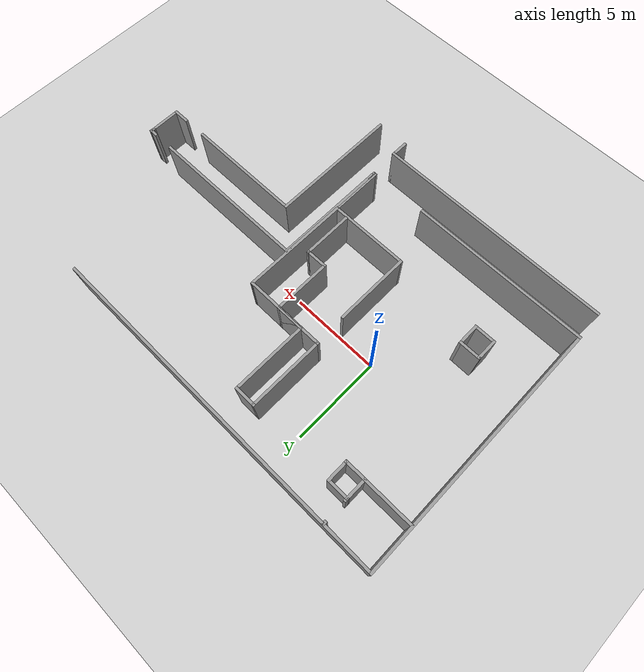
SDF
<sdf version="1.7">
 <world name="default">
  <light name="sun" type="directional">
   <pose>0 0 10 0 -0 0</pose>
   <diffuse>0.8 0.8 0.8 1</diffuse>
   <specular>0.2 0.2 0.2 1</specular>
   <attenuation>
    <range>1000</range>
    <constant>0.9</constant>
    <linear>0.01</linear>
    <quadratic>0.001</quadratic>
   </attenuation>
   <direction>-0.5 0.1 -0.9</direction>
   <spot><inner_angle>0</inner_angle><outer_angle>0</outer_angle><falloff>0</falloff></spot>
  </light>
  <model name="ground_plane">
   <static>1</static>
   <link name="link">
    <collision name="collision">
     <geometry><plane><normal>0 0 1</normal><size>100 100</size></plane></geometry>
     <surface>
      <contact><collide_bitmask>65535</collide_bitmask></contact>
      <friction><ode><mu>100</mu><mu2>50</mu2></ode></friction>
     </surface>
    </collision>
    <visual name="visual">
     <cast_shadows>0</cast_shadows>
     <geometry><plane><normal>0 0 1</normal><size>100 100</size></plane></geometry>
     <material>
      <script><uri>file://media/materials/scripts/gazebo.material</uri><name>Gazebo/Grey</name></script>
     </material>
    </visual>
   </link>
  </model>
  <gravity>0 0 -9.8</gravity>
  <magnetic_field>6e-06 2.3e-05 -4.2e-05</magnetic_field>
  <atmosphere type="adiabatic"/>
  <physics name="default_physics" default="0" type="ode">
   <max_step_size>0.001</max_step_size>
   <real_time_factor>1</real_time_factor>
   <real_time_update_rate>1000</real_time_update_rate>
  </physics>
  <scene><ambient>0.4 0.4 0.4 1</ambient><background>0.7 0.7 0.7 1</background><shadows>1</shadows></scene>
  <audio><device>default</device></audio>
  <spherical_coordinates>
   <surface_model>EARTH_WGS84</surface_model>
   <latitude_deg>0</latitude_deg>
   <longitude_deg>0</longitude_deg>
   <elevation>0</elevation>
   <heading_deg>0</heading_deg>
  </spherical_coordinates>
  <model name="sim_office">
   <pose>5.26742 -1.25499 0 0 -0 0</pose>
   <link name="Wall_0">
    <collision name="Wall_0_Collision">
     <geometry><box><size>3 0.15 2.5</size></box></geometry>
     <pose>0 0 1.25 0 -0 0</pose>
    </collision>
    <visual name="Wall_0_Visual">
     <pose>0 0 1.25 0 -0 0</pose>
     <geometry><box><size>3 0.15 2.5</size></box></geometry>
     <material>
      <script><uri>file://media/materials/scripts/gazebo.material</uri><name>Gazebo/Grey</name></script>
      <ambient>1 1 1 1</ambient>
     </material>
     <meta><layer>0</layer></meta>
    </visual>
    <pose>1.26034 -4.47343 0 0 -0 1.5708</pose>
   </link>
   <link name="Wall_1">
    <collision name="Wall_1_Collision">
     <geometry><box><size>4.5 0.15 2.5</size></box></geometry>
     <pose>0 0 1.25 0 -0 0</pose>
    </collision>
    <visual name="Wall_1_Visual">
     <pose>0 0 1.25 0 -0 0</pose>
     <geometry><box><size>4.5 0.15 2.5</size></box></geometry>
     <material>
      <script><uri>file://media/materials/scripts/gazebo.material</uri><name>Gazebo/Grey</name></script>
      <ambient>1 1 1 1</ambient>
     </material>
     <meta><layer>0</layer></meta>
    </visual>
    <pose>-0.914662 -3.04843 0 0 -0 3.14159</pose>
   </link>
   <link name="Wall_10">
    <collision name="Wall_10_Collision">
     <geometry><box><size>1.25 0.15 2.5</size></box></geometry>
     <pose>0 0 1.25 0 -0 0</pose>
    </collision>
    <visual name="Wall_10_Visual">
     <pose>0 0 1.25 0 -0 0</pose>
     <geometry><box><size>1.25 0.15 2.5</size></box></geometry>
     <material>
      <script><uri>file://media/materials/scripts/gazebo.material</uri><name>Gazebo/Grey</name></script>
      <ambient>1 1 1 1</ambient>
     </material>
     <meta><layer>0</layer></meta>
    </visual>
    <pose>-0.012141 -0.266058 0 0 -0 0</pose>
   </link>
   <link name="Wall_13">
    <collision name="Wall_13_Collision">
     <geometry><box><size>0.15 0.15 2.5</size></box></geometry>
     <pose>0 0 1.25 0 -0 0</pose>
    </collision>
    <visual name="Wall_13_Visual">
     <pose>0 0 1.25 0 -0 0</pose>
     <geometry><box><size>0.15 0.15 2.5</size></box></geometry>
     <material>
      <script><uri>file://media/materials/scripts/gazebo.material</uri><name>Gazebo/Grey</name></script>
      <ambient>1 1 1 1</ambient>
     </material>
     <meta><layer>0</layer></meta>
    </visual>
    <pose>0.537859 -0.266058 0 0 -0 0</pose>
   </link>
   <link name="Wall_16">
    <collision name="Wall_16_Collision">
     <geometry><box><size>2.89988 0.15 2.5</size></box></geometry>
     <pose>0 0 1.25 0 -0 0</pose>
    </collision>
    <visual name="Wall_16_Visual">
     <pose>0 0 1.25 0 -0 0</pose>
     <geometry><box><size>2.89988 0.15 2.5</size></box></geometry>
     <material>
      <script><uri>file://media/materials/scripts/gazebo.material</uri><name>Gazebo/Grey</name></script>
      <ambient>1 1 1 1</ambient>
     </material>
     <meta><layer>0</layer></meta>
    </visual>
    <pose>0.539646 -1.64096 0 0 -0 -1.5695</pose>
   </link>
   <link name="Wall_18">
    <collision name="Wall_18_Collision">
     <geometry><box><size>14.5 0.15 2.5</size></box></geometry>
     <pose>0 0 1.25 0 -0 0</pose>
    </collision>
    <visual name="Wall_18_Visual">
     <pose>0 0 1.25 0 -0 0</pose>
     <geometry><box><size>14.5 0.15 2.5</size></box></geometry>
     <material>
      <script><uri>file://media/materials/scripts/gazebo.material</uri><name>Gazebo/Grey</name></script>
      <ambient>1 1 1 1</ambient>
     </material>
     <meta><layer>0</layer></meta>
    </visual>
    <pose>-11.7707 1.22343 0 0 -0 -1.5708</pose>
   </link>
   <link name="Wall_2">
    <collision name="Wall_2_Collision">
     <geometry><box><size>4.25 0.15 2.5</size></box></geometry>
     <pose>0 0 1.25 0 -0 0</pose>
    </collision>
    <visual name="Wall_2_Visual">
     <pose>0 0 1.25 0 -0 0</pose>
     <geometry><box><size>4.25 0.15 2.5</size></box></geometry>
     <material>
      <script><uri>file://media/materials/scripts/gazebo.material</uri><name>Gazebo/Grey</name></script>
      <ambient>1 1 1 1</ambient>
     </material>
     <meta><layer>0</layer></meta>
    </visual>
    <pose>-3.08966 -0.998429 0 0 -0 1.5708</pose>
   </link>
   <link name="Wall_20">
    <collision name="Wall_20_Collision">
     <geometry><box><size>4 0.15 2.5</size></box></geometry>
     <pose>0 0 1.25 0 -0 0</pose>
    </collision>
    <visual name="Wall_20_Visual">
     <pose>0 0 1.25 0 -0 0</pose>
     <geometry><box><size>4 0.15 2.5</size></box></geometry>
     <material>
      <script><uri>file://media/materials/scripts/gazebo.material</uri><name>Gazebo/Grey</name></script>
      <ambient>1 1 1 1</ambient>
     </material>
     <meta><layer>0</layer></meta>
    </visual>
    <pose>-9.83471 5.84295 0 0 -0 0</pose>
   </link>
   <link name="Wall_23">
    <collision name="Wall_23_Collision">
     <geometry><box><size>1.25 0.15 2.5</size></box></geometry>
     <pose>0 0 1.25 0 -0 0</pose>
    </collision>
    <visual name="Wall_23_Visual">
     <pose>0 0 1.25 0 -0 0</pose>
     <geometry><box><size>1.25 0.15 2.5</size></box></geometry>
     <material>
      <script><uri>file://media/materials/scripts/gazebo.material</uri><name>Gazebo/Grey</name></script>
      <ambient>1 1 1 1</ambient>
     </material>
     <meta><layer>0</layer></meta>
    </visual>
    <pose>-7.90971 6.39295 0 0 -0 1.5708</pose>
   </link>
   <link name="Wall_24">
    <collision name="Wall_24_Collision">
     <geometry><box><size>1.25 0.15 2.5</size></box></geometry>
     <pose>0 0 1.25 0 -0 0</pose>
    </collision>
    <visual name="Wall_24_Visual">
     <pose>0 0 1.25 0 -0 0</pose>
     <geometry><box><size>1.25 0.15 2.5</size></box></geometry>
     <material>
      <script><uri>file://media/materials/scripts/gazebo.material</uri><name>Gazebo/Grey</name></script>
      <ambient>1 1 1 1</ambient>
     </material>
     <meta><layer>0</layer></meta>
    </visual>
    <pose>-8.45971 6.94296 0 0 -0 3.14159</pose>
   </link>
   <link name="Wall_25">
    <collision name="Wall_25_Collision">
     <geometry><box><size>1.25 0.15 2.5</size></box></geometry>
     <pose>0 0 1.25 0 -0 0</pose>
    </collision>
    <visual name="Wall_25_Visual">
     <pose>0 0 1.25 0 -0 0</pose>
     <geometry><box><size>1.25 0.15 2.5</size></box></geometry>
     <material>
      <script><uri>file://media/materials/scripts/gazebo.material</uri><name>Gazebo/Grey</name></script>
      <ambient>1 1 1 1</ambient>
     </material>
     <meta><layer>0</layer></meta>
    </visual>
    <pose>-9.00971 6.39295 0 0 -0 -1.5708</pose>
   </link>
   <link name="Wall_27">
    <collision name="Wall_27_Collision">
     <geometry><box><size>20 0.15 2.5</size></box></geometry>
     <pose>0 0 1.25 0 -0 0</pose>
    </collision>
    <visual name="Wall_27_Visual">
     <pose>0 0 1.25 0 -0 0</pose>
     <geometry><box><size>20 0.15 2.5</size></box></geometry>
     <material>
      <script><uri>file://media/materials/scripts/gazebo.material</uri><name>Gazebo/Grey</name></script>
      <ambient>1 1 1 1</ambient>
     </material>
     <meta><layer>0</layer></meta>
    </visual>
    <pose>-1.84568 8.39843 0 0 -0 0</pose>
   </link>
   <link name="Wall_29">
    <collision name="Wall_29_Collision">
     <geometry><box><size>3.5 0.15 2.5</size></box></geometry>
     <pose>0 0 1.25 0 -0 0</pose>
    </collision>
    <visual name="Wall_29_Visual">
     <pose>0 0 1.25 0 -0 0</pose>
     <geometry><box><size>3.5 0.15 2.5</size></box></geometry>
     <material>
      <script><uri>file://media/materials/scripts/gazebo.material</uri><name>Gazebo/Grey</name></script>
      <ambient>1 1 1 1</ambient>
     </material>
     <meta><layer>0</layer></meta>
    </visual>
    <pose>-0.387141 2.83394 0 0 -0 0</pose>
   </link>
   <link name="Wall_30">
    <collision name="Wall_30_Collision">
     <geometry><box><size>6.03244 0.15 2.5</size></box></geometry>
     <pose>0 0 1.25 0 -0 0</pose>
    </collision>
    <visual name="Wall_30_Visual">
     <pose>0 0 1.25 0 -0 0</pose>
     <geometry><box><size>6.03244 0.15 2.5</size></box></geometry>
     <material>
      <script><uri>file://media/materials/scripts/gazebo.material</uri><name>Gazebo/Grey</name></script>
      <ambient>1 1 1 1</ambient>
     </material>
     <meta><layer>0</layer></meta>
    </visual>
    <pose>1.2741 -0.107244 0 0 -0 -1.57547</pose>
   </link>
   <link name="Wall_36">
    <collision name="Wall_36_Collision">
     <geometry><box><size>1.25 0.15 2.5</size></box></geometry>
     <pose>0 0 1.25 0 -0 0</pose>
    </collision>
    <visual name="Wall_36_Visual">
     <pose>0 0 1.25 0 -0 0</pose>
     <geometry><box><size>1.25 0.15 2.5</size></box></geometry>
     <material>
      <script><uri>file://media/materials/scripts/gazebo.material</uri><name>Gazebo/Grey</name></script>
      <ambient>1 1 1 1</ambient>
     </material>
     <meta><layer>0</layer></meta>
    </visual>
    <pose>-9.02232 -2.41452 0 0 -0 -1.5708</pose>
   </link>
   <link name="Wall_37">
    <collision name="Wall_37_Collision">
     <geometry><box><size>1.25 0.15 2.5</size></box></geometry>
     <pose>0 0 1.25 0 -0 0</pose>
    </collision>
    <visual name="Wall_37_Visual">
     <pose>0 0 1.25 0 -0 0</pose>
     <geometry><box><size>1.25 0.15 2.5</size></box></geometry>
     <material>
      <script><uri>file://media/materials/scripts/gazebo.material</uri><name>Gazebo/Grey</name></script>
      <ambient>1 1 1 1</ambient>
     </material>
     <meta><layer>0</layer></meta>
    </visual>
    <pose>-8.47232 -2.96452 0 0 -0 0</pose>
   </link>
   <link name="Wall_38">
    <collision name="Wall_38_Collision">
     <geometry><box><size>1.25 0.15 2.5</size></box></geometry>
     <pose>0 0 1.25 0 -0 0</pose>
    </collision>
    <visual name="Wall_38_Visual">
     <pose>0 0 1.25 0 -0 0</pose>
     <geometry><box><size>1.25 0.15 2.5</size></box></geometry>
     <material>
      <script><uri>file://media/materials/scripts/gazebo.material</uri><name>Gazebo/Grey</name></script>
      <ambient>1 1 1 1</ambient>
     </material>
     <meta><layer>0</layer></meta>
    </visual>
    <pose>-7.92232 -2.41452 0 0 -0 1.5708</pose>
   </link>
   <link name="Wall_39">
    <collision name="Wall_39_Collision">
     <geometry><box><size>1.25 0.15 2.5</size></box></geometry>
     <pose>0 0 1.25 0 -0 0</pose>
    </collision>
    <visual name="Wall_39_Visual">
     <pose>0 0 1.25 0 -0 0</pose>
     <geometry><box><size>1.25 0.15 2.5</size></box></geometry>
     <material>
      <script><uri>file://media/materials/scripts/gazebo.material</uri><name>Gazebo/Grey</name></script>
      <ambient>1 1 1 1</ambient>
     </material>
     <meta><layer>0</layer></meta>
    </visual>
    <pose>-8.47232 -1.86452 0 0 -0 3.14159</pose>
   </link>
   <link name="Wall_4">
    <collision name="Wall_4_Collision">
     <geometry><box><size>4.25 0.15 2.5</size></box></geometry>
     <pose>0 0 1.25 0 -0 0</pose>
    </collision>
    <visual name="Wall_4_Visual">
     <pose>0 0 1.25 0 -0 0</pose>
     <geometry><box><size>4.25 0.15 2.5</size></box></geometry>
     <material>
      <script><uri>file://media/materials/scripts/gazebo.material</uri><name>Gazebo/Grey</name></script>
      <ambient>1 1 1 1</ambient>
     </material>
     <meta><layer>0</layer></meta>
    </visual>
    <pose>-3.16214 4.88394 0 0 -0 1.5708</pose>
   </link>
   <link name="Wall_43">
    <collision name="Wall_43_Collision">
     <geometry><box><size>0.25 0.15 2.5</size></box></geometry>
     <pose>0 0 1.25 0 -0 0</pose>
    </collision>
    <visual name="Wall_43_Visual">
     <pose>0 0 1.25 0 -0 0</pose>
     <geometry><box><size>0.25 0.15 2.5</size></box></geometry>
     <material>
      <script><uri>file://media/materials/scripts/gazebo.material</uri><name>Gazebo/Grey</name></script>
      <ambient>1 1 1 1</ambient>
     </material>
     <meta><layer>0</layer></meta>
    </visual>
    <pose>-9.00971 6.99296 0 0 -0 1.5708</pose>
   </link>
   <link name="Wall_45">
    <collision name="Wall_45_Collision">
     <geometry><box><size>0.25 0.15 2.5</size></box></geometry>
     <pose>0 0 1.25 0 -0 0</pose>
    </collision>
    <visual name="Wall_45_Visual">
     <pose>0 0 1.25 0 -0 0</pose>
     <geometry><box><size>0.25 0.15 2.5</size></box></geometry>
     <material>
      <script><uri>file://media/materials/scripts/gazebo.material</uri><name>Gazebo/Grey</name></script>
      <ambient>1 1 1 1</ambient>
     </material>
     <meta><layer>0</layer></meta>
    </visual>
    <pose>-9.00776 8.33508 0 0 -0 -1.5708</pose>
   </link>
   <link name="Wall_47">
    <collision name="Wall_47_Collision">
     <geometry><box><size>9.96619 0.15 2.5</size></box></geometry>
     <pose>0 0 1.25 0 -0 0</pose>
    </collision>
    <visual name="Wall_47_Visual">
     <pose>0 0 1.25 0 -0 0</pose>
     <geometry><box><size>9.96619 0.15 2.5</size></box></geometry>
     <material>
      <script><uri>file://media/materials/scripts/gazebo.material</uri><name>Gazebo/Grey</name></script>
      <ambient>1 1 1 1</ambient>
     </material>
     <meta><layer>0</layer></meta>
    </visual>
    <pose>-6.86259 -5.95157 0 0 -0 0</pose>
   </link>
   <link name="Wall_5">
    <collision name="Wall_5_Collision">
     <geometry><box><size>1.25 0.15 2.5</size></box></geometry>
     <pose>0 0 1.25 0 -0 0</pose>
    </collision>
    <visual name="Wall_5_Visual">
     <pose>0 0 1.25 0 -0 0</pose>
     <geometry><box><size>1.25 0.15 2.5</size></box></geometry>
     <material>
      <script><uri>file://media/materials/scripts/gazebo.material</uri><name>Gazebo/Grey</name></script>
      <ambient>1 1 1 1</ambient>
     </material>
     <meta><layer>0</layer></meta>
    </visual>
    <pose>-2.61214 6.93394 0 0 -0 0</pose>
   </link>
   <link name="Wall_50">
    <collision name="Wall_50_Collision">
     <geometry><box><size>13.25 0.15 2.5</size></box></geometry>
     <pose>0 0 1.25 0 -0 0</pose>
    </collision>
    <visual name="Wall_50_Visual">
     <pose>0 0 1.25 0 -0 0</pose>
     <geometry><box><size>13.25 0.15 2.5</size></box></geometry>
     <material>
      <script><uri>file://media/materials/scripts/gazebo.material</uri><name>Gazebo/Grey</name></script>
      <ambient>1 1 1 1</ambient>
     </material>
     <meta><layer>0</layer></meta>
    </visual>
    <pose>-5.12068 -7.53467 0 0 -0 0</pose>
   </link>
   <link name="Wall_56">
    <collision name="Wall_56_Collision">
     <geometry><box><size>7.25 0.15 2.5</size></box></geometry>
     <pose>0 0 1.25 0 -0 0</pose>
    </collision>
    <visual name="Wall_56_Visual">
     <pose>0 0 1.25 0 -0 0</pose>
     <geometry><box><size>7.25 0.15 2.5</size></box></geometry>
     <material>
      <script><uri>file://media/materials/scripts/gazebo.material</uri><name>Gazebo/Grey</name></script>
      <ambient>1 1 1 1</ambient>
     </material>
     <meta><layer>0</layer></meta>
    </visual>
    <pose>3.21034 -4.84843 0 0 -0 1.5708</pose>
   </link>
   <link name="Wall_57">
    <collision name="Wall_57_Collision">
     <geometry><box><size>6.54472 0.15 2.5</size></box></geometry>
     <pose>0 0 1.25 0 -0 0</pose>
    </collision>
    <visual name="Wall_57_Visual">
     <pose>0 0 1.25 0 -0 0</pose>
     <geometry><box><size>6.54472 0.15 2.5</size></box></geometry>
     <material>
      <script><uri>file://media/materials/scripts/gazebo.material</uri><name>Gazebo/Grey</name></script>
      <ambient>1 1 1 1</ambient>
     </material>
     <meta><layer>0</layer></meta>
    </visual>
    <pose>6.4077 -1.29843 0 0 -0 0</pose>
   </link>
   <link name="Wall_6">
    <collision name="Wall_6_Collision">
     <geometry><box><size>4.25 0.15 2.5</size></box></geometry>
     <pose>0 0 1.25 0 -0 0</pose>
    </collision>
    <visual name="Wall_6_Visual">
     <pose>0 0 1.25 0 -0 0</pose>
     <geometry><box><size>4.25 0.15 2.5</size></box></geometry>
     <material>
      <script><uri>file://media/materials/scripts/gazebo.material</uri><name>Gazebo/Grey</name></script>
      <ambient>1 1 1 1</ambient>
     </material>
     <meta><layer>0</layer></meta>
    </visual>
    <pose>-2.06214 4.88394 0 0 -0 -1.5708</pose>
   </link>
   <link name="Wall_61">
    <collision name="Wall_61_Collision">
     <geometry><box><size>0.25 0.15 2.5</size></box></geometry>
     <pose>0 0 1.25 0 -0 0</pose>
    </collision>
    <visual name="Wall_61_Visual">
     <pose>0 0 1.25 0 -0 0</pose>
     <geometry><box><size>0.25 0.15 2.5</size></box></geometry>
     <material>
      <script><uri>file://media/materials/scripts/gazebo.material</uri><name>Gazebo/Grey</name></script>
      <ambient>1 1 1 1</ambient>
     </material>
     <meta><layer>0</layer></meta>
    </visual>
    <pose>1.31034 -5.89843 0 0 -0 0</pose>
   </link>
   <link name="Wall_62">
    <collision name="Wall_62_Collision">
     <geometry><box><size>6.5 0.15 2.5</size></box></geometry>
     <pose>0 0 1.25 0 -0 0</pose>
    </collision>
    <visual name="Wall_62_Visual">
     <pose>0 0 1.25 0 -0 0</pose>
     <geometry><box><size>6.5 0.15 2.5</size></box></geometry>
     <material>
      <script><uri>file://media/materials/scripts/gazebo.material</uri><name>Gazebo/Grey</name></script>
      <ambient>1 1 1 1</ambient>
     </material>
     <meta><layer>0</layer></meta>
    </visual>
    <pose>1.36034 -2.72343 0 0 -0 1.5708</pose>
   </link>
   <link name="Wall_63">
    <collision name="Wall_63_Collision">
     <geometry><box><size>9 0.15 2.5</size></box></geometry>
     <pose>0 0 1.25 0 -0 0</pose>
    </collision>
    <visual name="Wall_63_Visual">
     <pose>0 0 1.25 0 -0 0</pose>
     <geometry><box><size>9 0.15 2.5</size></box></geometry>
     <material>
      <script><uri>file://media/materials/scripts/gazebo.material</uri><name>Gazebo/Grey</name></script>
      <ambient>1 1 1 1</ambient>
     </material>
     <meta><layer>0</layer></meta>
    </visual>
    <pose>5.78534 0.451571 0 0 -0 0</pose>
   </link>
   <link name="Wall_66">
    <collision name="Wall_66_Collision">
     <geometry><box><size>0.955284 0.15 2.5</size></box></geometry>
     <pose>0 0 1.25 0 -0 0</pose>
    </collision>
    <visual name="Wall_66_Visual">
     <pose>0 0 1.25 0 -0 0</pose>
     <geometry><box><size>0.955284 0.15 2.5</size></box></geometry>
     <material>
      <script><uri>file://media/materials/scripts/gazebo.material</uri><name>Gazebo/Grey</name></script>
      <ambient>1 1 1 1</ambient>
     </material>
     <meta><layer>0</layer></meta>
    </visual>
    <pose>11.3577 -1.29843 0 0 -0 0</pose>
   </link>
   <link name="Wall_67">
    <collision name="Wall_67_Collision">
     <geometry><box><size>1.75 0.15 2.5</size></box></geometry>
     <pose>0 0 1.25 0 -0 0</pose>
    </collision>
    <visual name="Wall_67_Visual">
     <pose>0 0 1.25 0 -0 0</pose>
     <geometry><box><size>1.75 0.15 2.5</size></box></geometry>
     <material>
      <script><uri>file://media/materials/scripts/gazebo.material</uri><name>Gazebo/Grey</name></script>
      <ambient>1 1 1 1</ambient>
     </material>
     <meta><layer>0</layer></meta>
    </visual>
    <pose>11.7603 -0.498429 0 0 -0 1.5708</pose>
   </link>
   <link name="Wall_69">
    <collision name="Wall_69_Collision">
     <geometry><box><size>0.292879 0.15 2.5</size></box></geometry>
     <pose>0 0 1.25 0 -0 0</pose>
    </collision>
    <visual name="Wall_69_Visual">
     <pose>0 0 1.25 0 -0 0</pose>
     <geometry><box><size>0.292879 0.15 2.5</size></box></geometry>
     <material>
      <script><uri>file://media/materials/scripts/gazebo.material</uri><name>Gazebo/Grey</name></script>
      <ambient>1 1 1 1</ambient>
     </material>
     <meta><layer>0</layer></meta>
    </visual>
    <pose>11.7638 0.372929 0 0 -0 1.52292</pose>
   </link>
   <link name="Wall_70">
    <collision name="Wall_70_Collision">
     <geometry><box><size>0.5 0.15 2.5</size></box></geometry>
     <pose>0 0 1.25 0 -0 0</pose>
    </collision>
    <visual name="Wall_70_Visual">
     <pose>0 0 1.25 0 -0 0</pose>
     <geometry><box><size>0.5 0.15 2.5</size></box></geometry>
     <material>
      <script><uri>file://media/materials/scripts/gazebo.material</uri><name>Gazebo/Grey</name></script>
      <ambient>1 1 1 1</ambient>
     </material>
     <meta><layer>0</layer></meta>
    </visual>
    <pose>11.5922 0.444286 0 0 -0 3.14159</pose>
   </link>
   <link name="Wall_72">
    <collision name="Wall_72_Collision">
     <geometry><box><size>1 0.15 2.5</size></box></geometry>
     <pose>0 0 1.25 0 -0 0</pose>
    </collision>
    <visual name="Wall_72_Visual">
     <pose>0 0 1.25 0 -0 0</pose>
     <geometry><box><size>1 0.15 2.5</size></box></geometry>
     <material>
      <script><uri>file://media/materials/scripts/gazebo.material</uri><name>Gazebo/Grey</name></script>
      <ambient>1 1 1 1</ambient>
     </material>
     <meta><layer>0</layer></meta>
    </visual>
    <pose>1.42932 -7.95967 0 0 -0 -1.5708</pose>
   </link>
   <link name="Wall_8">
    <collision name="Wall_8_Collision">
     <geometry><box><size>2.75 0.15 2.5</size></box></geometry>
     <pose>0 0 1.25 0 -0 0</pose>
    </collision>
    <visual name="Wall_8_Visual">
     <pose>0 0 1.25 0 -0 0</pose>
     <geometry><box><size>2.75 0.15 2.5</size></box></geometry>
     <material>
      <script><uri>file://media/materials/scripts/gazebo.material</uri><name>Gazebo/Grey</name></script>
      <ambient>1 1 1 1</ambient>
     </material>
     <meta><layer>0</layer></meta>
    </visual>
    <pose>-1.86214 2.83394 0 0 -0 0</pose>
   </link>
   <link name="Wall_9">
    <collision name="Wall_9_Collision">
     <geometry><box><size>3.25 0.15 2.5</size></box></geometry>
     <pose>0 0 1.25 0 -0 0</pose>
    </collision>
    <visual name="Wall_9_Visual">
     <pose>0 0 1.25 0 -0 0</pose>
     <geometry><box><size>3.25 0.15 2.5</size></box></geometry>
     <material>
      <script><uri>file://media/materials/scripts/gazebo.material</uri><name>Gazebo/Grey</name></script>
      <ambient>1 1 1 1</ambient>
     </material>
     <meta><layer>0</layer></meta>
    </visual>
    <pose>-0.562141 1.28394 0 0 -0 -1.5708</pose>
   </link>
   <static>1</static>
  </model>
 </world>
</sdf>
